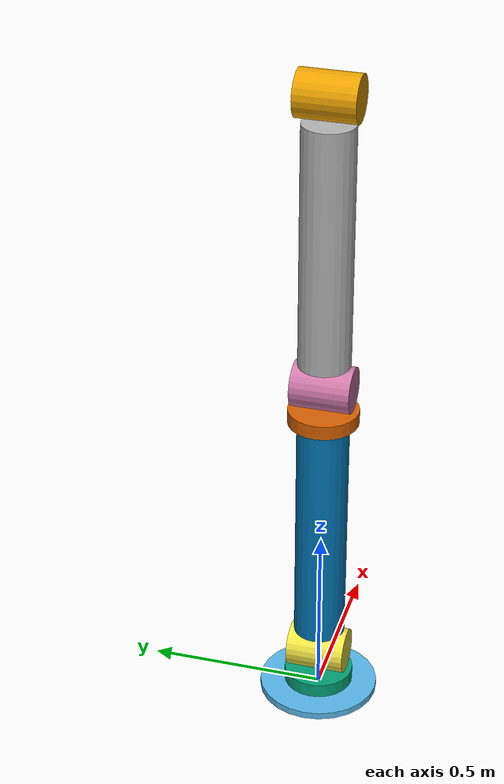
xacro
<?xml version="1.0"  encoding="utf-8" ?>
<robot name="robotic_arm"
       xmlns:xacro="http://www.ros.org/wiki/xacro"
       xmlns:xi="http://www.w3.org/2001/XInclude">
    <xacro:include filename="$(find robotic_arm_description)/urdf/base.xacro" />
    <xacro:include filename="$(find robotic_arm_description)/urdf/forearm.xacro" />
    <xacro:include filename="$(find robotic_arm_description)/urdf/arm.xacro" />
    <xacro:include filename="$(find robotic_arm_description)/urdf/gripper.xacro" />
    <xacro:include filename="$(find robotic_arm_description)/urdf/gazebo.xacro" />
    <xacro:include filename="$(find robotic_arm_description)/urdf/transmission.xacro" />

</robot>

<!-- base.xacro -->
<robot name="robotic_arm" xmlns:xacro="http://www.ros.org/wiki/xacro" >

  <link name="world" />

  <link name="base_link">

    <inertial>
      <mass value="0.00244239" />
      <inertia ixx="1.719e-05" ixy="0" ixz="0" iyy="1.719e-05" iyz="0" izz="3.419e-05" />
    </inertial>

    <visual name="visual">
      <geometry>
        <cylinder length="0.02" radius="0.17" />
      </geometry>
    </visual>

    <collision name="collision">
      <geometry>
        <cylinder length="0.02" radius="0.17" />
      </geometry>
    </collision>
  </link>

  <joint name="world_base_joint" type="fixed">
    <child link="base_link" />
    <parent link="world" />
  </joint>

</robot>

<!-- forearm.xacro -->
<robot name="robotic_arm" xmlns:xacro="http://www.ros.org/wiki/xacro" >

  <link name="forearm_0_link">
    <inertial>
      <mass value="0.00159678" />
      <inertia ixx="4.13238e-06" ixy="0" ixz="0" iyy="4.13238e-06" iyz="0" izz="7.82136e-06" />
    </inertial>

    <visual name="visual">
      <geometry>
      <cylinder length="0.0408183" radius="0.0989767" />
      </geometry>
    </visual>

    <collision name="collision">
      <geometry>
      <cylinder length="0.040818" radius="0.098977" />
      </geometry>
    </collision>
  </link>

  <link name="forearm_1_link">
    <inertial>
      <origin rpy=" 1.57432 0 0" xyz="0 0 0 " />
      <mass value="0.00277573" />
      <inertia ixx="9.31023e-06" ixy="0" ixz="0" iyy="9.31023e-06" iyz="0" izz="5.77898e-06" />
    </inertial>

    <visual name="visual">
      <origin rpy=" 1.57432 0 0" xyz="0 0 0 " />
      <geometry>
        <cylinder length="0.166607" radius="0.0645285" />
      </geometry>
    </visual>

    <collision name="collision">
      <origin rpy=" 1.57432 0 0" xyz="0 0 0 " />
        <geometry>
          <cylinder length="0.166607" radius="0.064529" />
        </geometry>
      </collision>
  </link>

  <link name="forearm_2_link">
  <inertial>
    <mass value="0.0146534" />
    <inertia ixx="0.000606767" ixy="0" ixz="0" iyy="0.000606767" iyz="0" izz="3.88693e-05" />
  </inertial>

  <visual name="visual">
    <geometry>
      <cylinder length="0.693528" radius="0.0728366" />
    </geometry>
  </visual>

  <collision name="collision">
    <geometry>
      <cylinder length="0.693528" radius="0.072837" />
    </geometry>
  </collision>
  </link>

  <joint name="base_forearm_joint" type="revolute">
    <parent link="base_link" />
    <child link="forearm_0_link" />
    <origin rpy=" 0 0 0" xyz="0 0 0.035 " />
    <axis xyz="0 0 1" />
    <limit effort="100000" lower="-3e+307" upper="3e+307" velocity="100" />
  </joint>

  <joint name="forearm_0_1_joint" type="revolute">
    <parent link="forearm_0_link" />
    <child link="forearm_1_link" />
    <origin rpy=" 0 0 0" xyz="0 0 0.09 " />
    <axis xyz="0 1 0" />
    <limit effort="1000000" lower="-1.8" upper="1.8" velocity="100" />
  </joint>

  <joint name="forearm_1_2_joint" type="fixed">
    <origin rpy=" 0 0 0" xyz="0 0 0.415 " />
    <parent link="forearm_1_link" />
    <child link="forearm_2_link" />
  </joint>

</robot>

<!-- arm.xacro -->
<robot name="robotic_arm" xmlns:xacro="http://www.ros.org/wiki/xacro" >

  <link name="arm_0_link">
    <inertial>
      <mass value="0.00159678" />
      <inertia ixx="4.13238e-06" ixy="0" ixz="0" iyy="4.13238e-06" iyz="0" izz="7.82136e-06" />
    </inertial>

    <visual name="visual">
      <geometry>
      <cylinder length="0.0408183" radius="0.0989767" />
      </geometry>
    </visual>

    <collision name="collision">
      <geometry>
      <cylinder length="0.040818" radius="0.098977" />
      </geometry>
    </collision>
  </link>

  <link name="arm_1_link">
    <inertial>
      <origin rpy=" 1.57432 0 0" xyz="0 0 0 " />
      <mass value="0.00277573" />
      <inertia ixx="9.31023e-06" ixy="0" ixz="0" iyy="9.31023e-06" iyz="0" izz="5.77898e-06" />
    </inertial>

    <visual name="visual">
      <origin rpy=" 1.57432 0 0" xyz="0 0 0 " />
      <geometry>
        <cylinder length="0.166607" radius="0.0645285" />
      </geometry>
    </visual>

    <collision name="collision">
      <origin rpy=" 1.57432 0 0" xyz="0 0 0 " />
        <geometry>
          <cylinder length="0.166607" radius="0.064529" />
        </geometry>
      </collision>
  </link>

  <link name="arm_2_link">
  <inertial>
    <mass value="0.0146534" />
    <inertia ixx="0.000606767" ixy="0" ixz="0" iyy="0.000606767" iyz="0" izz="3.88693e-05" />
  </inertial>

  <visual name="visual">
    <geometry>
      <cylinder length="0.693528" radius="0.0728366" />
    </geometry>
  </visual>

  <collision name="collision">
    <geometry>
      <cylinder length="0.693528" radius="0.072837" />
    </geometry>
  </collision>
  </link>

  <joint name="forearm_arm_joint" type="revolute">
    <parent link="forearm_2_link" />
    <child link="arm_0_link" />
    <origin rpy=" 0 0 0" xyz="0 0 0.37 " />
    <axis xyz="0 0 1" />
    <limit effort="100000" lower="-3e+307" upper="3e+307" velocity="100" />
  </joint>

  <joint name="arm_0_1_joint" type="revolute">
    <parent link="arm_0_link" />
    <child link="arm_1_link" />
    <origin rpy=" 0 0 0" xyz="0 0 0.09 " />
    <axis xyz="0 1 0" />
    <limit effort="100000" lower="-2.3" upper="2.3" velocity="100" />
  </joint>

  <joint name="arm_1_2_joint" type="fixed">
    <origin rpy=" 0 0 0" xyz="0 0 0.415 " />
    <parent link="arm_1_link" />
    <child link="arm_2_link" />
  </joint>

</robot>

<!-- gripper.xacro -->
<robot name="robotic_arm" xmlns:xacro="http://www.ros.org/wiki/xacro" >

  <link name="gripper_link">
    <inertial>
      <origin rpy=" 1.57432 0 0" xyz="0 0 0 " />
      <mass value="0.00277573" />
      <inertia ixx="9.31023e-06" ixy="0" ixz="0" iyy="9.31023e-06" iyz="0" izz="5.77898e-06" />
    </inertial>

    <visual name="visual">
      <origin rpy=" 1.57432 0 0" xyz="0 0 0 " />
      <geometry>
        <cylinder length="0.166607" radius="0.0645285" />
      </geometry>
    </visual>

    <collision name="collision">
      <origin rpy=" 1.57432 0 0" xyz="0 0 0 " />
      <geometry>
        <cylinder length="0.166607" radius="0.064529" />
      </geometry>
    </collision>
  </link>

  <joint name="arm_gripper_joint" type="fixed">
    <parent link="arm_2_link" />
    <child link="gripper_link" />
    <origin rpy=" 0 0 0" xyz="0 0 0.42 " />
  </joint>

</robot>
